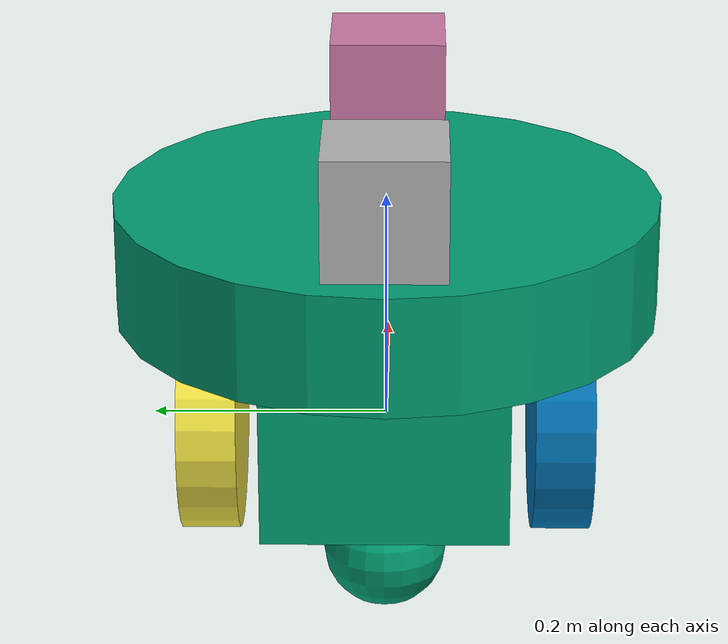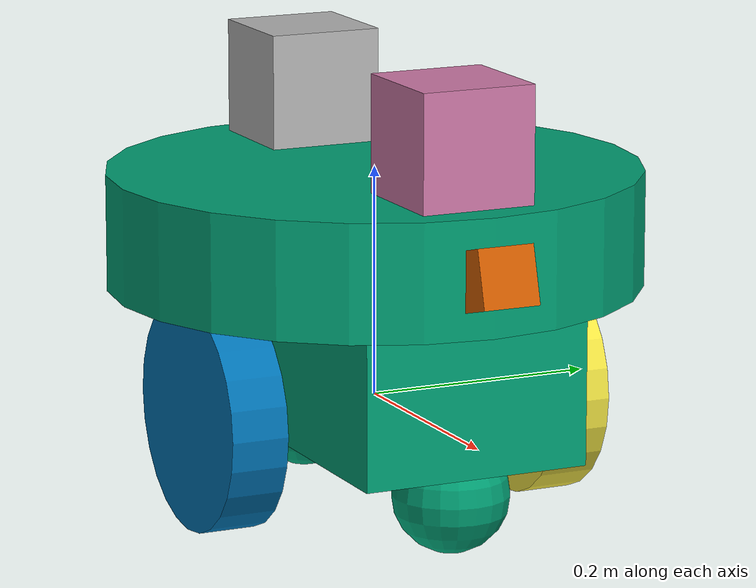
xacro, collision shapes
<?xml version='1.0'?>

<robot name="udacity_bot" xmlns:xacro="http://www.ros.org/wiki/xacro">

  <xacro:include filename="slam_bot.gazebo" />

  <link name="robot_footprint"></link>

  <joint name="robot_footprint_joint" type="fixed">
    <origin xyz="0 0 0" rpy="0 0 0" />
    <parent link="robot_footprint"/>
    <child link="chassis" />
  </joint>

  <joint type="continuous" name="left_wheel_hinge">
    <origin xyz="0 0.15 0" rpy="0 0 0"/>
    <child link="left_wheel"/>
    <parent link="chassis"/>
    <axis xyz="0 1 0" rpy="0 0 0"/>
    <limit effort="10000" velocity="1000"/>
    <dynamics damping="1.0" friction="1.0"/>
  </joint>

  <joint type="continuous" name="right_wheel_hinge">
    <origin xyz="0 -0.15 0" rpy="0 0 0"/>
    <child link="right_wheel"/>
    <parent link="chassis"/>
    <axis xyz="0 1 0" rpy="0 0 0"/>
    <limit effort="10000" velocity="1000"/>
    <dynamics damping="1.0" friction="1.0"/>
  </joint>

  <joint type="fixed" name="camera_joint">
    <origin xyz="0.23 0 0.15" rpy="0 ${-pi/12} 0"/>
    <child link="camera"/>
    <parent link="chassis"/>
  </joint>

  <joint type="fixed" name="hokuyo_joint">
    <origin xyz="0.15 0 0.25" rpy="0 0 0"/>
    <child link="hokuyo"/>
    <parent link="chassis"/>
  </joint>

  <joint type="fixed" name="hokuyo2_joint">
    <origin xyz="-0.15 0 0.25" rpy="0 0 3.14"/>
    <child link="hokuyo2"/>
    <parent link="chassis"/>
  </joint>

  <joint name="camera_optical_joint" type="fixed">
   <!-- these values have to be these values otherwise the gazebo camera
       image won't be aligned properly with the frame it is supposedly
       originating from -->
   <origin xyz="0 0 0" rpy="${-pi/2} 0 ${-pi/2}"/>
   <parent link="camera"/>
   <child link="camera_link_optical"/>
 </joint>

 <link name="camera_link_optical">
 </link>

  <link name='chassis'>
    <pose>0 0 0.1 0 0 0</pose>

    <inertial>
      <mass value="15.0"/>
      <origin xyz="0.0 0 0" rpy=" 0 0 0"/>
      <inertia
          ixx="0.1" ixy="0" ixz="0"
          iyy="0.1" iyz="0"
          izz="0.1"
      />
    </inertial>

    <collision name='collision'>
      <origin xyz="0 0 0.05" rpy=" 0 0 0"/>
      <geometry>
        <box size=".4 .2 .15"/>
      </geometry>
    </collision>

    <visual name='chassis_visual'>
      <origin xyz="0 0 0.05" rpy=" 0 0 0"/>
      <geometry>
        <box size=".4 .2 .15"/>
      </geometry>
    </visual>

    <collision name='head_collision'>
      <origin xyz="0 0 0.15" rpy=" 0 0 0"/>
      <geometry>
        <cylinder radius="0.23" length="0.1"/>
      </geometry>
    </collision>

    <visual name='head_visual'>
      <origin xyz="0 0 0.15" rpy=" 0 0 0"/>
      <geometry>
        <cylinder radius="0.23" length="0.1"/>
      </geometry>
    </visual>

    <collision name='back_caster_collision'>
      <origin xyz="-0.15 0 -0.05" rpy=" 0 0 0"/>
      <geometry>
        <sphere radius="0.0499"/>
      </geometry>
    </collision>

    <visual name='back_caster_visual'>
      <origin xyz="-0.15 0 -0.05" rpy=" 0 0 0"/>
      <geometry>
        <sphere radius="0.05"/>
      </geometry>
    </visual>

    <collision name='front_caster_collision'>
      <origin xyz="0.15 0 -0.05" rpy=" 0 0 0"/>
      <geometry>
        <sphere radius="0.0499"/>
      </geometry>
    </collision>

    <visual name='front_caster_visual'>
      <origin xyz="0.15 0 -0.05" rpy=" 0 0 0"/>
      <geometry>
        <sphere radius="0.05"/>
      </geometry>
    </visual>

  </link>

  <link name="left_wheel">
    <inertial>
      <mass value="5.0"/>
      <origin xyz="0.0 0 0" rpy=" 0 1.5707 1.5707"/>
      <inertia
          ixx="0.1" ixy="0" ixz="0"
          iyy="0.1" iyz="0"
          izz="0.1"
      />
    </inertial>

    <collision name='left_wheel_collision'>
      <origin xyz="0.0 0 0" rpy=" 0 1.5707 1.5707"/>
      <geometry>
        <cylinder radius="0.1" length="0.05"/>
      </geometry>
    </collision>

    <visual name='left_wheel_visual'>
      <origin xyz="0.0 0 0" rpy=" 0 1.5707 1.5707"/>
      <geometry>
        <cylinder radius="0.1" length="0.05"/>
      </geometry>
    </visual>
  </link>

  <link name="right_wheel">
    <inertial>
      <mass value="5.0"/>
      <origin xyz="0.0 0 0" rpy=" 0 1.5707 1.5707"/>
      <inertia
          ixx="0.1" ixy="0" ixz="0"
          iyy="0.1" iyz="0"
          izz="0.1"
      />
    </inertial>

    <collision name='right_wheel_collision'>
      <origin xyz="0.0 0 0" rpy=" 0 1.5707 1.5707"/>
      <geometry>
        <cylinder radius="0.1" length="0.05"/>
      </geometry>
    </collision>

    <visual name='right_wheel_visual'>
      <origin xyz="0.0 0 0" rpy=" 0 1.5707 1.5707"/>
      <geometry>
        <cylinder radius="0.1" length="0.05"/>
      </geometry>
    </visual>
  </link>

  <link name="camera">
    <inertial>
      <mass value="0.1"/>
      <origin xyz="0.0 0 0" rpy=" 0 0 0"/>
      <inertia
          ixx="1e-6" ixy="0" ixz="0"
          iyy="1e-6" iyz="0"
          izz="1e-6"
      />
    </inertial>

    <collision name='camera_collision'>
      <origin xyz="0.0 0 0" rpy=" 0 0 0"/>
      <geometry>
        <box size="0.05 0.05 0.05"/>
      </geometry>
    </collision>

    <visual name='camera_visual'>
      <origin xyz="0.0 0 0" rpy=" 0 0 0"/>
      <geometry>
        <box size="0.05 0.05 0.05"/>
      </geometry>
    </visual>
  </link>

  <link name="hokuyo">
    <inertial>
      <mass value="0.1"/>
      <origin xyz="0.0 0 0" rpy=" 0 0 0"/>
      <inertia
          ixx="1e-6" ixy="0" ixz="0"
          iyy="1e-6" iyz="0"
          izz="1e-6"
      />
    </inertial>

    <collision name='hokuyo_collision'>
      <origin xyz="0.0 0 0" rpy=" 0 0 0"/>
      <geometry>
        <box size="0.1 0.1 0.1"/>
      </geometry>
    </collision>

    <visual name='hokuyo_visual'>
      <origin xyz="0.0 0 0" rpy=" 0 0 0"/>
      <geometry>
        <mesh filename="package://slam_bot/meshes/hokuyo.dae"/>
      </geometry>
    </visual>
  </link>

  <link name="hokuyo2">
    <inertial>
      <mass value="0.1"/>
      <origin xyz="0.0 0 0" rpy=" 0 0 0"/>
      <inertia
          ixx="1e-6" ixy="0" ixz="0"
          iyy="1e-6" iyz="0"
          izz="1e-6"
      />
    </inertial>

    <collision name='hokuyo2_collision'>
      <origin xyz="0.0 0 0" rpy=" 0 0 0"/>
      <geometry>
        <box size="0.1 0.1 0.1"/>
      </geometry>
    </collision>

    <visual name='hokuyo2_visual'>
      <origin xyz="0.0 0 0" rpy=" 0 0 0"/>
      <geometry>
        <mesh filename="package://slam_bot/meshes/hokuyo.dae"/>
      </geometry>
    </visual>
  </link>

</robot>
